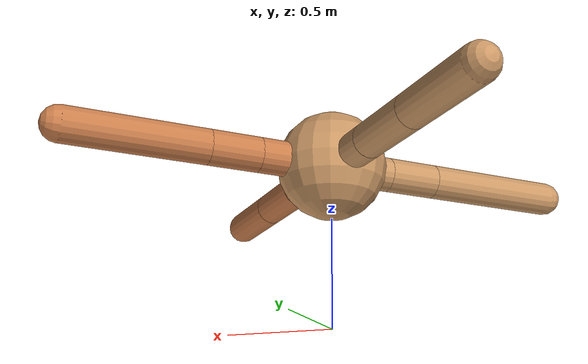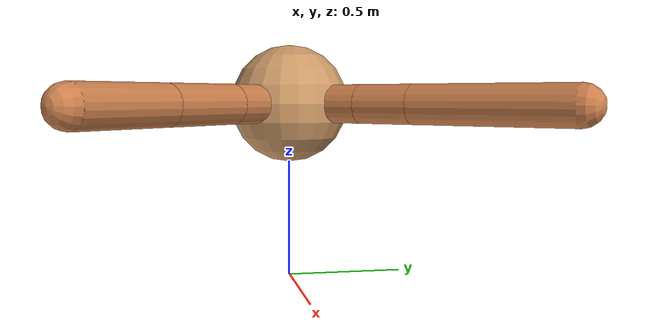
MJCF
<mujoco model="ant">
  <compiler angle="degree" coordinate="local" inertiafromgeom="true" />
  <option integrator="RK4" timestep="0.01" />
  <custom>
    <numeric data="0.0 0.0 0.55 1.0 0.0 0.0 0.0 0.0 1.0 0.0 -1.0 0.0 -1.0 0.0 1.0" name="init_qpos" />
  </custom>
  <default>
    <joint armature="1" damping="1" limited="true" />
    <geom conaffinity="0" condim="3" density="5.0" friction="1.5 0.1 0.1" margin="0.01" rgba="0.8 0.6 0.4 1" />
  </default>
  <worldbody>
    <body name="torso" pos="0 0 0.75">
      <geom name="torso_geom" pos="0 0 0" size="0.25" type="sphere" />

      <body name="front_left_leg" pos="0 0 0">
        <geom fromto="0.0 0.0 0.0 0.2538687955515712 0.2538687955515712 0.0" name="aux_1_geom" size="0.08" type="capsule" rgba=".8 .5 .3 1" />
        <body name="aux_1" pos="0.2538687955515712 0.2538687955515712 0.0">
          <joint axis="0 0 1" name="hip_1" pos="0.0 0.0 0.0" range="-40 40" type="hinge" />
          <geom fromto="0.0 0.0 0.0 0.16369323438754227 0.16369323438754227 0.0" name="left_leg_geom" size="0.08" type="capsule" rgba=".8 .5 .3 1" />
          <body pos="0.16369323438754227 0.16369323438754227 0.0" name="front_left_foot">
            <joint axis="-1 1 0" name="ankle_1" pos="0.0 0.0 0.0" range="30 100" type="hinge" />
            <geom fromto="0.0 0.0 0.0 0.44641546112919156 0.44641546112919156 0.0" name="left_ankle_geom" size="0.08" type="capsule" rgba=".8 .5 .3 1" />
          </body>
        </body>
      </body>
      <body name="front_right_leg" pos="0 0 0">
        <geom fromto="0.0 0.0 0.0 -0.2600982085491686 0.2600982085491686 0.0" name="aux_2_geom" size="0.08" type="capsule" />
        <body name="aux_2" pos="-0.2600982085491686 0.2600982085491686 0.0">
          <joint axis="0 0 1" name="hip_2" pos="0.0 0.0 0.0" range="-40 40" type="hinge" />
          <geom fromto="0.0 0.0 0.0 -0.2556023973128892 0.2556023973128892 0.0" name="right_leg_geom" size="0.08" type="capsule" />
          <body pos="-0.2556023973128892 0.2556023973128892 0.0" name="front_right_foot">
            <joint axis="1 1 0" name="ankle_2" pos="0.0 0.0 0.0" range="-100 -30" type="hinge" />
            <geom fromto="0.0 0.0 0.0 -0.3297639998713093 0.3297639998713093 0.0" name="right_ankle_geom" size="0.08" type="capsule" />
          </body>
        </body>
      </body>
      <body name="left_back_leg" pos="0 0 0">
        <geom fromto="0.0 0.0 0.0 -0.20179952485518513 -0.20179952485518513 0.0" name="aux_3_geom" size="0.08" type="capsule" />
        <body name="aux_3" pos="-0.20179952485518513 -0.20179952485518513 0.0">
          <joint axis="0 0 1" name="hip_3" pos="0.0 0.0 0.0" range="-40 40" type="hinge" />
          <geom fromto="0.0 0.0 0.0 -0.17068913149293757 -0.17068913149293757 0.0" name="back_leg_geom" size="0.08" type="capsule" />
          <body pos="-0.17068913149293757 -0.17068913149293757 0.0" name="left_back_foot">
            <joint axis="-1 1 0" name="ankle_3" pos="0.0 0.0 0.0" range="-100 -30" type="hinge" />
            <geom fromto="0.0 0.0 0.0 -0.4685543379986068 -0.4685543379986068 0.0" name="third_ankle_geom" size="0.08" type="capsule" />
          </body>
        </body>
      </body>
      <body name="right_back_leg" pos="0 0 0">
        <geom fromto="0.0 0.0 0.0 0.27150637100128255 -0.27150637100128255 0.0" name="aux_4_geom" size="0.08" type="capsule" rgba=".8 .5 .3 1" />
        <body name="aux_4" pos="0.27150637100128255 -0.27150637100128255 0.0">
          <joint axis="0 0 1" name="hip_4" pos="0.0 0.0 0.0" range="-40 40" type="hinge" />
          <geom fromto="0.0 0.0 0.0 0.250483567180417 -0.250483567180417 0.0" name="rightback_leg_geom" size="0.08" type="capsule" rgba=".8 .5 .3 1" />
          <body pos="0.250483567180417 -0.250483567180417 0.0" name="right_back_foot">
            <joint axis="1 1 0" name="ankle_4" pos="0.0 0.0 0.0" range="30 100" type="hinge" />
            <geom fromto="0.0 0.0 0.0 0.30091556266871866 -0.30091556266871866 0.0" name="fourth_ankle_geom" size="0.08" type="capsule" rgba=".8 .5 .3 1" />
          </body>
        </body>
      </body>
    </body>
  </worldbody>
  <actuator>
    <motor ctrllimited="true" ctrlrange="-1.0 1.0" joint="hip_4" gear="150" />
    <motor ctrllimited="true" ctrlrange="-1.0 1.0" joint="ankle_4" gear="150" />
    <motor ctrllimited="true" ctrlrange="-1.0 1.0" joint="hip_1" gear="150" />
    <motor ctrllimited="true" ctrlrange="-1.0 1.0" joint="ankle_1" gear="150" />
    <motor ctrllimited="true" ctrlrange="-1.0 1.0" joint="hip_2" gear="150" />
    <motor ctrllimited="true" ctrlrange="-1.0 1.0" joint="ankle_2" gear="150" />
    <motor ctrllimited="true" ctrlrange="-1.0 1.0" joint="hip_3" gear="150" />
    <motor ctrllimited="true" ctrlrange="-1.0 1.0" joint="ankle_3" gear="150" />
  </actuator>
</mujoco>
